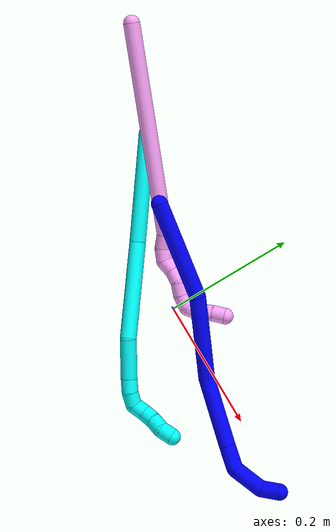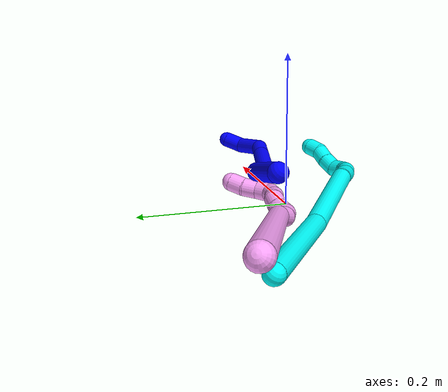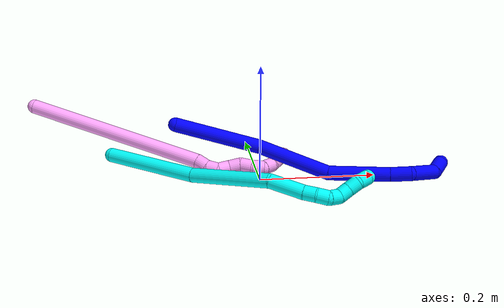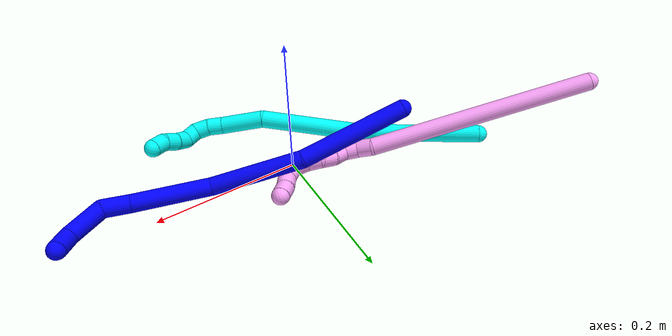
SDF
<sdf version="1.7">
 <world name="default">
  <model name="1">
   <static>0</static>
   <link name="1">
    <collision name="collision-cylinder-e_1_1_4">
     <pose>0.044914 -0.021619 0.056949 0.362815 0.635348 0.120477</pose>
     <geometry><cylinder><radius>0.0125</radius><length>0.151365</length></cylinder></geometry>
     <surface>
      <friction><ode><mu>1.16</mu><mu2>1.16</mu2><slip1>0</slip1><slip2>0</slip2></ode></friction>
      <contact><ode><kp>1e+06</kp><kd>1</kd><max_vel>0</max_vel><min_depth>0.001</min_depth></ode></contact>
     </surface>
    </collision>
    <visual name="visual-cylinder-e_1_1_4">
     <pose>0.044914 -0.021619 0.056949 0.362815 0.635348 0.120477</pose>
     <geometry><cylinder><radius>0.0125</radius><length>0.151365</length></cylinder></geometry>
     <material><ambient>0 0 1 1</ambient></material>
    </visual>
    <collision name="collision-cylinder-e_2_4_5">
     <pose>0.139457 -0.051892 0.153822 0.213468 0.882098 0.101069</pose>
     <geometry><cylinder><radius>0.0125</radius><length>0.12856</length></cylinder></geometry>
     <surface>
      <friction><ode><mu>1.16</mu><mu2>1.16</mu2><slip1>0</slip1><slip2>0</slip2></ode></friction>
      <contact><ode><kp>1e+06</kp><kd>1</kd><max_vel>0</max_vel><min_depth>0.001</min_depth></ode></contact>
     </surface>
    </collision>
    <visual name="visual-cylinder-e_2_4_5">
     <pose>0.139457 -0.051892 0.153822 0.213468 0.882098 0.101069</pose>
     <geometry><cylinder><radius>0.0125</radius><length>0.12856</length></cylinder></geometry>
     <material><ambient>0 0 1 1</ambient></material>
    </visual>
    <collision name="collision-cylinder-e_3_5_6">
     <pose>0.226017 -0.084832 0.222298 0.704849 0.777988 0.299236</pose>
     <geometry><cylinder><radius>0.0125</radius><length>0.105239</length></cylinder></geometry>
     <surface>
      <friction><ode><mu>1.16</mu><mu2>1.16</mu2><slip1>0</slip1><slip2>0</slip2></ode></friction>
      <contact><ode><kp>1e+06</kp><kd>1</kd><max_vel>0</max_vel><min_depth>0.001</min_depth></ode></contact>
     </surface>
    </collision>
    <visual name="visual-cylinder-e_3_5_6">
     <pose>0.226017 -0.084832 0.222298 0.704849 0.777988 0.299236</pose>
     <geometry><cylinder><radius>0.0125</radius><length>0.105239</length></cylinder></geometry>
     <material><ambient>0 0 1 1</ambient></material>
    </visual>
    <collision name="collision-cylinder-e_4_6_7">
     <pose>0.275346 -0.118523 0.26002 0.798015 0.756455 0.331989</pose>
     <geometry><cylinder><radius>0.0125</radius><length>0.036126</length></cylinder></geometry>
     <surface>
      <friction><ode><mu>1.16</mu><mu2>1.16</mu2><slip1>0</slip1><slip2>0</slip2></ode></friction>
      <contact><ode><kp>1e+06</kp><kd>1</kd><max_vel>0</max_vel><min_depth>0.001</min_depth></ode></contact>
     </surface>
    </collision>
    <visual name="visual-cylinder-e_4_6_7">
     <pose>0.275346 -0.118523 0.26002 0.798015 0.756455 0.331989</pose>
     <geometry><cylinder><radius>0.0125</radius><length>0.036126</length></cylinder></geometry>
     <material><ambient>0 0 1 1</ambient></material>
    </visual>
    <collision name="collision-cylinder-e_5_7_8">
     <pose>0.291672 -0.142014 0.289212 0.613081 0.159143 0.050467</pose>
     <geometry><cylinder><radius>0.0125</radius><length>0.049585</length></cylinder></geometry>
     <surface>
      <friction><ode><mu>1.16</mu><mu2>1.16</mu2><slip1>0</slip1><slip2>0</slip2></ode></friction>
      <contact><ode><kp>1e+06</kp><kd>1</kd><max_vel>0</max_vel><min_depth>0.001</min_depth></ode></contact>
     </surface>
    </collision>
    <visual name="visual-cylinder-e_5_7_8">
     <pose>0.291672 -0.142014 0.289212 0.613081 0.159143 0.050467</pose>
     <geometry><cylinder><radius>0.0125</radius><length>0.049585</length></cylinder></geometry>
     <material><ambient>0 0 1 1</ambient></material>
    </visual>
    <collision name="collision-cylinder-e_6_8_2">
     <pose>0.290835 -0.168106 0.315956 1.06038 -0.333419 -0.196634</pose>
     <geometry><cylinder><radius>0.0125</radius><length>0.029124</length></cylinder></geometry>
     <surface>
      <friction><ode><mu>1.16</mu><mu2>1.16</mu2><slip1>0</slip1><slip2>0</slip2></ode></friction>
      <contact><ode><kp>1e+06</kp><kd>1</kd><max_vel>0</max_vel><min_depth>0.001</min_depth></ode></contact>
     </surface>
    </collision>
    <visual name="visual-cylinder-e_6_8_2">
     <pose>0.290835 -0.168106 0.315956 1.06038 -0.333419 -0.196634</pose>
     <geometry><cylinder><radius>0.0125</radius><length>0.029124</length></cylinder></geometry>
     <material><ambient>0 0 1 1</ambient></material>
    </visual>
    <collision name="collision-sphere-2">
     <pose>0.286069 -0.180112 0.322678 0 -0 0</pose>
     <geometry><sphere><radius>0.0125</radius></sphere></geometry>
     <surface>
      <friction><ode><mu>1.16</mu><mu2>1.16</mu2><slip1>0</slip1><slip2>0</slip2></ode></friction>
      <contact><ode><kp>1e+06</kp><kd>1</kd><max_vel>0</max_vel><min_depth>0.001</min_depth></ode></contact>
     </surface>
    </collision>
    <visual name="visual-sphere-2">
     <pose>0.286069 -0.180112 0.322678 0 -0 0</pose>
     <geometry><sphere><radius>0.0125</radius></sphere></geometry>
     <material><ambient>0 0 1 1</ambient></material>
    </visual>
    <collision name="collision-sphere-4">
     <pose>0.089829 -0.043238 0.113897 0 -0 0</pose>
     <geometry><sphere><radius>0.0125</radius></sphere></geometry>
     <surface>
      <friction><ode><mu>1.16</mu><mu2>1.16</mu2><slip1>0</slip1><slip2>0</slip2></ode></friction>
      <contact><ode><kp>1e+06</kp><kd>1</kd><max_vel>0</max_vel><min_depth>0.001</min_depth></ode></contact>
     </surface>
    </collision>
    <visual name="visual-sphere-4">
     <pose>0.089829 -0.043238 0.113897 0 -0 0</pose>
     <geometry><sphere><radius>0.0125</radius></sphere></geometry>
     <material><ambient>0 0 1 1</ambient></material>
    </visual>
    <collision name="collision-sphere-1">
     <geometry><sphere><radius>0.0125</radius></sphere></geometry>
     <surface>
      <friction><ode><mu>1.16</mu><mu2>1.16</mu2><slip1>0</slip1><slip2>0</slip2></ode></friction>
      <contact><ode><kp>1e+06</kp><kd>1</kd><max_vel>0</max_vel><min_depth>0.001</min_depth></ode></contact>
     </surface>
    </collision>
    <visual name="visual-sphere-1">
     <geometry><sphere><radius>0.0125</radius></sphere></geometry>
     <material><ambient>0 0 1 1</ambient></material>
    </visual>
    <collision name="collision-sphere-8">
     <pose>0.295601 -0.156099 0.309233 0 -0 0</pose>
     <geometry><sphere><radius>0.0125</radius></sphere></geometry>
     <surface>
      <friction><ode><mu>1.16</mu><mu2>1.16</mu2><slip1>0</slip1><slip2>0</slip2></ode></friction>
      <contact><ode><kp>1e+06</kp><kd>1</kd><max_vel>0</max_vel><min_depth>0.001</min_depth></ode></contact>
     </surface>
    </collision>
    <visual name="visual-sphere-8">
     <pose>0.295601 -0.156099 0.309233 0 -0 0</pose>
     <geometry><sphere><radius>0.0125</radius></sphere></geometry>
     <material><ambient>0 0 1 1</ambient></material>
    </visual>
    <collision name="collision-sphere-5">
     <pose>0.189086 -0.060547 0.193747 0 -0 0</pose>
     <geometry><sphere><radius>0.0125</radius></sphere></geometry>
     <surface>
      <friction><ode><mu>1.16</mu><mu2>1.16</mu2><slip1>0</slip1><slip2>0</slip2></ode></friction>
      <contact><ode><kp>1e+06</kp><kd>1</kd><max_vel>0</max_vel><min_depth>0.001</min_depth></ode></contact>
     </surface>
    </collision>
    <visual name="visual-sphere-5">
     <pose>0.189086 -0.060547 0.193747 0 -0 0</pose>
     <geometry><sphere><radius>0.0125</radius></sphere></geometry>
     <material><ambient>0 0 1 1</ambient></material>
    </visual>
    <collision name="collision-sphere-6">
     <pose>0.262948 -0.109118 0.250848 0 -0 0</pose>
     <geometry><sphere><radius>0.0125</radius></sphere></geometry>
     <surface>
      <friction><ode><mu>1.16</mu><mu2>1.16</mu2><slip1>0</slip1><slip2>0</slip2></ode></friction>
      <contact><ode><kp>1e+06</kp><kd>1</kd><max_vel>0</max_vel><min_depth>0.001</min_depth></ode></contact>
     </surface>
    </collision>
    <visual name="visual-sphere-6">
     <pose>0.262948 -0.109118 0.250848 0 -0 0</pose>
     <geometry><sphere><radius>0.0125</radius></sphere></geometry>
     <material><ambient>0 0 1 1</ambient></material>
    </visual>
    <collision name="collision-sphere-7">
     <pose>0.287743 -0.127929 0.269191 0 -0 0</pose>
     <geometry><sphere><radius>0.0125</radius></sphere></geometry>
     <surface>
      <friction><ode><mu>1.16</mu><mu2>1.16</mu2><slip1>0</slip1><slip2>0</slip2></ode></friction>
      <contact><ode><kp>1e+06</kp><kd>1</kd><max_vel>0</max_vel><min_depth>0.001</min_depth></ode></contact>
     </surface>
    </collision>
    <visual name="visual-sphere-7">
     <pose>0.287743 -0.127929 0.269191 0 -0 0</pose>
     <geometry><sphere><radius>0.0125</radius></sphere></geometry>
     <material><ambient>0 0 1 1</ambient></material>
    </visual>
    <inertial>
     <pose>0.162787 -0.070182 0.169452 0 -0 0</pose>
     <mass>0.5</mass>
     <inertia>
      <ixx>0.000523</ixx>
      <ixy>0</ixy>
      <ixz>0</ixz>
      <iyy>0.000613</iyy>
      <iyz>0</iyz>
      <izz>-0.000198</izz>
     </inertia>
    </inertial>
   </link>
   <pose>-0.140435 0.061318 0.085054 -2.30134 -0.055555 -1.03619</pose>
  </model>
  <model name="3">
   <static>0</static>
   <link name="3">
    <collision name="collision-cylinder-e_1_1_4">
     <pose>0.078138 0.016786 0.027687 -0.545019 1.17796 -0.369155</pose>
     <geometry><cylinder><radius>0.0125</radius><length>0.169162</length></cylinder></geometry>
     <surface>
      <friction><ode><mu>1.16</mu><mu2>1.16</mu2><slip1>0</slip1><slip2>0</slip2></ode></friction>
      <contact><ode><kp>1e+06</kp><kd>1</kd><max_vel>0</max_vel><min_depth>0.001</min_depth></ode></contact>
     </surface>
    </collision>
    <visual name="visual-cylinder-e_1_1_4">
     <pose>0.078138 0.016786 0.027687 -0.545019 1.17796 -0.369155</pose>
     <geometry><cylinder><radius>0.0125</radius><length>0.169162</length></cylinder></geometry>
     <material><ambient>0.003922 1 0.996078 1</ambient></material>
    </visual>
    <collision name="collision-cylinder-e_2_4_5">
     <pose>0.228738 0.042405 0.070101 -0.54027 1.33811 -0.4311</pose>
     <geometry><cylinder><radius>0.0125</radius><length>0.148937</length></cylinder></geometry>
     <surface>
      <friction><ode><mu>1.16</mu><mu2>1.16</mu2><slip1>0</slip1><slip2>0</slip2></ode></friction>
      <contact><ode><kp>1e+06</kp><kd>1</kd><max_vel>0</max_vel><min_depth>0.001</min_depth></ode></contact>
     </surface>
    </collision>
    <visual name="visual-cylinder-e_2_4_5">
     <pose>0.228738 0.042405 0.070101 -0.54027 1.33811 -0.4311</pose>
     <geometry><cylinder><radius>0.0125</radius><length>0.148937</length></cylinder></geometry>
     <material><ambient>0.003922 1 0.996078 1</ambient></material>
    </visual>
    <collision name="collision-cylinder-e_3_5_6">
     <pose>0.327171 0.056741 0.09943 -0.360376 1.02974 -0.2054</pose>
     <geometry><cylinder><radius>0.0125</radius><length>0.060599</length></cylinder></geometry>
     <surface>
      <friction><ode><mu>1.16</mu><mu2>1.16</mu2><slip1>0</slip1><slip2>0</slip2></ode></friction>
      <contact><ode><kp>1e+06</kp><kd>1</kd><max_vel>0</max_vel><min_depth>0.001</min_depth></ode></contact>
     </surface>
    </collision>
    <visual name="visual-cylinder-e_3_5_6">
     <pose>0.327171 0.056741 0.09943 -0.360376 1.02974 -0.2054</pose>
     <geometry><cylinder><radius>0.0125</radius><length>0.060599</length></cylinder></geometry>
     <material><ambient>0.003922 1 0.996078 1</ambient></material>
    </visual>
    <collision name="collision-cylinder-e_4_6_7">
     <pose>0.362619 0.063084 0.118618 -0.181379 1.11374 -0.113116</pose>
     <geometry><cylinder><radius>0.0125</radius><length>0.021123</length></cylinder></geometry>
     <surface>
      <friction><ode><mu>1.16</mu><mu2>1.16</mu2><slip1>0</slip1><slip2>0</slip2></ode></friction>
      <contact><ode><kp>1e+06</kp><kd>1</kd><max_vel>0</max_vel><min_depth>0.001</min_depth></ode></contact>
     </surface>
    </collision>
    <visual name="visual-cylinder-e_4_6_7">
     <pose>0.362619 0.063084 0.118618 -0.181379 1.11374 -0.113116</pose>
     <geometry><cylinder><radius>0.0125</radius><length>0.021123</length></cylinder></geometry>
     <material><ambient>0.003922 1 0.996078 1</ambient></material>
    </visual>
    <collision name="collision-cylinder-e_5_7_8">
     <pose>0.380022 0.063567 0.129326 0.058363 0.912149 0.028637</pose>
     <geometry><cylinder><radius>0.0125</radius><length>0.020044</length></cylinder></geometry>
     <surface>
      <friction><ode><mu>1.16</mu><mu2>1.16</mu2><slip1>0</slip1><slip2>0</slip2></ode></friction>
      <contact><ode><kp>1e+06</kp><kd>1</kd><max_vel>0</max_vel><min_depth>0.001</min_depth></ode></contact>
     </surface>
    </collision>
    <visual name="visual-cylinder-e_5_7_8">
     <pose>0.380022 0.063567 0.129326 0.058363 0.912149 0.028637</pose>
     <geometry><cylinder><radius>0.0125</radius><length>0.020044</length></cylinder></geometry>
     <material><ambient>0.003922 1 0.996078 1</ambient></material>
    </visual>
    <collision name="collision-cylinder-e_6_8_9">
     <pose>0.392555 0.057231 0.1421 0.732207 0.475701 0.185364</pose>
     <geometry><cylinder><radius>0.0125</radius><length>0.02012</length></cylinder></geometry>
     <surface>
      <friction><ode><mu>1.16</mu><mu2>1.16</mu2><slip1>0</slip1><slip2>0</slip2></ode></friction>
      <contact><ode><kp>1e+06</kp><kd>1</kd><max_vel>0</max_vel><min_depth>0.001</min_depth></ode></contact>
     </surface>
    </collision>
    <visual name="visual-cylinder-e_6_8_9">
     <pose>0.392555 0.057231 0.1421 0.732207 0.475701 0.185364</pose>
     <geometry><cylinder><radius>0.0125</radius><length>0.02012</length></cylinder></geometry>
     <material><ambient>0.003922 1 0.996078 1</ambient></material>
    </visual>
    <collision name="collision-cylinder-e_7_9_10">
     <pose>0.403162 0.043458 0.150569 1.34164 0.643261 0.517017</pose>
     <geometry><cylinder><radius>0.0125</radius><length>0.020005</length></cylinder></geometry>
     <surface>
      <friction><ode><mu>1.16</mu><mu2>1.16</mu2><slip1>0</slip1><slip2>0</slip2></ode></friction>
      <contact><ode><kp>1e+06</kp><kd>1</kd><max_vel>0</max_vel><min_depth>0.001</min_depth></ode></contact>
     </surface>
    </collision>
    <visual name="visual-cylinder-e_7_9_10">
     <pose>0.403162 0.043458 0.150569 1.34164 0.643261 0.517017</pose>
     <geometry><cylinder><radius>0.0125</radius><length>0.020005</length></cylinder></geometry>
     <material><ambient>0.003922 1 0.996078 1</ambient></material>
    </visual>
    <collision name="collision-cylinder-e_8_10_11">
     <pose>0.416244 0.028691 0.153518 1.41002 0.786703 0.678866</pose>
     <geometry><cylinder><radius>0.0125</radius><length>0.020005</length></cylinder></geometry>
     <surface>
      <friction><ode><mu>1.16</mu><mu2>1.16</mu2><slip1>0</slip1><slip2>0</slip2></ode></friction>
      <contact><ode><kp>1e+06</kp><kd>1</kd><max_vel>0</max_vel><min_depth>0.001</min_depth></ode></contact>
     </surface>
    </collision>
    <visual name="visual-cylinder-e_8_10_11">
     <pose>0.416244 0.028691 0.153518 1.41002 0.786703 0.678866</pose>
     <geometry><cylinder><radius>0.0125</radius><length>0.020005</length></cylinder></geometry>
     <material><ambient>0.003922 1 0.996078 1</ambient></material>
    </visual>
    <collision name="collision-cylinder-e_9_11_2">
     <pose>0.4281 0.014028 0.158905 1.06528 0.497603 0.297317</pose>
     <geometry><cylinder><radius>0.0125</radius><length>0.020006</length></cylinder></geometry>
     <surface>
      <friction><ode><mu>1.16</mu><mu2>1.16</mu2><slip1>0</slip1><slip2>0</slip2></ode></friction>
      <contact><ode><kp>1e+06</kp><kd>1</kd><max_vel>0</max_vel><min_depth>0.001</min_depth></ode></contact>
     </surface>
    </collision>
    <visual name="visual-cylinder-e_9_11_2">
     <pose>0.4281 0.014028 0.158905 1.06528 0.497603 0.297317</pose>
     <geometry><cylinder><radius>0.0125</radius><length>0.020006</length></cylinder></geometry>
     <material><ambient>0.003922 1 0.996078 1</ambient></material>
    </visual>
    <collision name="collision-sphere-2">
     <pose>0.432875 0.006338 0.163162 0 -0 0</pose>
     <geometry><sphere><radius>0.0125</radius></sphere></geometry>
     <surface>
      <friction><ode><mu>1.16</mu><mu2>1.16</mu2><slip1>0</slip1><slip2>0</slip2></ode></friction>
      <contact><ode><kp>1e+06</kp><kd>1</kd><max_vel>0</max_vel><min_depth>0.001</min_depth></ode></contact>
     </surface>
    </collision>
    <visual name="visual-sphere-2">
     <pose>0.432875 0.006338 0.163162 0 -0 0</pose>
     <geometry><sphere><radius>0.0125</radius></sphere></geometry>
     <material><ambient>0.003922 1 0.996078 1</ambient></material>
    </visual>
    <collision name="collision-sphere-11">
     <pose>0.423326 0.021719 0.154649 0 -0 0</pose>
     <geometry><sphere><radius>0.0125</radius></sphere></geometry>
     <surface>
      <friction><ode><mu>1.16</mu><mu2>1.16</mu2><slip1>0</slip1><slip2>0</slip2></ode></friction>
      <contact><ode><kp>1e+06</kp><kd>1</kd><max_vel>0</max_vel><min_depth>0.001</min_depth></ode></contact>
     </surface>
    </collision>
    <visual name="visual-sphere-11">
     <pose>0.423326 0.021719 0.154649 0 -0 0</pose>
     <geometry><sphere><radius>0.0125</radius></sphere></geometry>
     <material><ambient>0.003922 1 0.996078 1</ambient></material>
    </visual>
    <collision name="collision-sphere-10">
     <pose>0.409161 0.035664 0.152387 0 -0 0</pose>
     <geometry><sphere><radius>0.0125</radius></sphere></geometry>
     <surface>
      <friction><ode><mu>1.16</mu><mu2>1.16</mu2><slip1>0</slip1><slip2>0</slip2></ode></friction>
      <contact><ode><kp>1e+06</kp><kd>1</kd><max_vel>0</max_vel><min_depth>0.001</min_depth></ode></contact>
     </surface>
    </collision>
    <visual name="visual-sphere-10">
     <pose>0.409161 0.035664 0.152387 0 -0 0</pose>
     <geometry><sphere><radius>0.0125</radius></sphere></geometry>
     <material><ambient>0.003922 1 0.996078 1</ambient></material>
    </visual>
    <collision name="collision-sphere-9">
     <pose>0.397162 0.051252 0.148751 0 -0 0</pose>
     <geometry><sphere><radius>0.0125</radius></sphere></geometry>
     <surface>
      <friction><ode><mu>1.16</mu><mu2>1.16</mu2><slip1>0</slip1><slip2>0</slip2></ode></friction>
      <contact><ode><kp>1e+06</kp><kd>1</kd><max_vel>0</max_vel><min_depth>0.001</min_depth></ode></contact>
     </surface>
    </collision>
    <visual name="visual-sphere-9">
     <pose>0.397162 0.051252 0.148751 0 -0 0</pose>
     <geometry><sphere><radius>0.0125</radius></sphere></geometry>
     <material><ambient>0.003922 1 0.996078 1</ambient></material>
    </visual>
    <collision name="collision-sphere-4">
     <pose>0.156276 0.033572 0.055375 0 -0 0</pose>
     <geometry><sphere><radius>0.0125</radius></sphere></geometry>
     <surface>
      <friction><ode><mu>1.16</mu><mu2>1.16</mu2><slip1>0</slip1><slip2>0</slip2></ode></friction>
      <contact><ode><kp>1e+06</kp><kd>1</kd><max_vel>0</max_vel><min_depth>0.001</min_depth></ode></contact>
     </surface>
    </collision>
    <visual name="visual-sphere-4">
     <pose>0.156276 0.033572 0.055375 0 -0 0</pose>
     <geometry><sphere><radius>0.0125</radius></sphere></geometry>
     <material><ambient>0.003922 1 0.996078 1</ambient></material>
    </visual>
    <collision name="collision-sphere-1">
     <geometry><sphere><radius>0.0125</radius></sphere></geometry>
     <surface>
      <friction><ode><mu>1.16</mu><mu2>1.16</mu2><slip1>0</slip1><slip2>0</slip2></ode></friction>
      <contact><ode><kp>1e+06</kp><kd>1</kd><max_vel>0</max_vel><min_depth>0.001</min_depth></ode></contact>
     </surface>
    </collision>
    <visual name="visual-sphere-1">
     <geometry><sphere><radius>0.0125</radius></sphere></geometry>
     <material><ambient>0.003922 1 0.996078 1</ambient></material>
    </visual>
    <collision name="collision-sphere-8">
     <pose>0.387948 0.063209 0.135449 0 -0 0</pose>
     <geometry><sphere><radius>0.0125</radius></sphere></geometry>
     <surface>
      <friction><ode><mu>1.16</mu><mu2>1.16</mu2><slip1>0</slip1><slip2>0</slip2></ode></friction>
      <contact><ode><kp>1e+06</kp><kd>1</kd><max_vel>0</max_vel><min_depth>0.001</min_depth></ode></contact>
     </surface>
    </collision>
    <visual name="visual-sphere-8">
     <pose>0.387948 0.063209 0.135449 0 -0 0</pose>
     <geometry><sphere><radius>0.0125</radius></sphere></geometry>
     <material><ambient>0.003922 1 0.996078 1</ambient></material>
    </visual>
    <collision name="collision-sphere-5">
     <pose>0.301199 0.051238 0.084827 0 -0 0</pose>
     <geometry><sphere><radius>0.0125</radius></sphere></geometry>
     <surface>
      <friction><ode><mu>1.16</mu><mu2>1.16</mu2><slip1>0</slip1><slip2>0</slip2></ode></friction>
      <contact><ode><kp>1e+06</kp><kd>1</kd><max_vel>0</max_vel><min_depth>0.001</min_depth></ode></contact>
     </surface>
    </collision>
    <visual name="visual-sphere-5">
     <pose>0.301199 0.051238 0.084827 0 -0 0</pose>
     <geometry><sphere><radius>0.0125</radius></sphere></geometry>
     <material><ambient>0.003922 1 0.996078 1</ambient></material>
    </visual>
    <collision name="collision-sphere-6">
     <pose>0.353142 0.062244 0.114033 0 -0 0</pose>
     <geometry><sphere><radius>0.0125</radius></sphere></geometry>
     <surface>
      <friction><ode><mu>1.16</mu><mu2>1.16</mu2><slip1>0</slip1><slip2>0</slip2></ode></friction>
      <contact><ode><kp>1e+06</kp><kd>1</kd><max_vel>0</max_vel><min_depth>0.001</min_depth></ode></contact>
     </surface>
    </collision>
    <visual name="visual-sphere-6">
     <pose>0.353142 0.062244 0.114033 0 -0 0</pose>
     <geometry><sphere><radius>0.0125</radius></sphere></geometry>
     <material><ambient>0.003922 1 0.996078 1</ambient></material>
    </visual>
    <collision name="collision-sphere-7">
     <pose>0.372097 0.063925 0.123202 0 -0 0</pose>
     <geometry><sphere><radius>0.0125</radius></sphere></geometry>
     <surface>
      <friction><ode><mu>1.16</mu><mu2>1.16</mu2><slip1>0</slip1><slip2>0</slip2></ode></friction>
      <contact><ode><kp>1e+06</kp><kd>1</kd><max_vel>0</max_vel><min_depth>0.001</min_depth></ode></contact>
     </surface>
    </collision>
    <visual name="visual-sphere-7">
     <pose>0.372097 0.063925 0.123202 0 -0 0</pose>
     <geometry><sphere><radius>0.0125</radius></sphere></geometry>
     <material><ambient>0.003922 1 0.996078 1</ambient></material>
    </visual>
    <inertial>
     <pose>0.230486 0.036152 0.076737 0 -0 0</pose>
     <mass>0.5</mass>
     <inertia>
      <ixx>0.000171</ixx>
      <ixy>0</ixy>
      <ixz>0</ixz>
      <iyy>0.000619</iyy>
      <iyz>0</iyz>
      <izz>-0.000778</izz>
     </inertia>
    </inertial>
   </link>
   <pose>-0.2523 0.103724 0.018536 -2.57384 -0.351112 -0.633515</pose>
  </model>
  <model name="4">
   <static>0</static>
   <link name="4">
    <collision name="collision-cylinder-e_1_1_4">
     <pose>0.04089 -0.027912 -0.150019 2.95764 0.261817 1.91938</pose>
     <geometry><cylinder><radius>0.0125</radius><length>0.315954</length></cylinder></geometry>
     <surface>
      <friction><ode><mu>1.16</mu><mu2>1.16</mu2><slip1>0</slip1><slip2>0</slip2></ode></friction>
      <contact><ode><kp>1e+06</kp><kd>1</kd><max_vel>0</max_vel><min_depth>0.001</min_depth></ode></contact>
     </surface>
    </collision>
    <visual name="visual-cylinder-e_1_1_4">
     <pose>0.04089 -0.027912 -0.150019 2.95764 0.261817 1.91938</pose>
     <geometry><cylinder><radius>0.0125</radius><length>0.315954</length></cylinder></geometry>
     <material><ambient>1 0.65098 0.996078 1</ambient></material>
    </visual>
    <collision name="collision-cylinder-e_2_4_5">
     <pose>0.081058 -0.058511 -0.31083 2.89765 -0.064869 -0.517516</pose>
     <geometry><cylinder><radius>0.0125</radius><length>0.022291</length></cylinder></geometry>
     <surface>
      <friction><ode><mu>1.16</mu><mu2>1.16</mu2><slip1>0</slip1><slip2>0</slip2></ode></friction>
      <contact><ode><kp>1e+06</kp><kd>1</kd><max_vel>0</max_vel><min_depth>0.001</min_depth></ode></contact>
     </surface>
    </collision>
    <visual name="visual-cylinder-e_2_4_5">
     <pose>0.081058 -0.058511 -0.31083 2.89765 -0.064869 -0.517516</pose>
     <geometry><cylinder><radius>0.0125</radius><length>0.022291</length></cylinder></geometry>
     <material><ambient>1 0.65098 0.996078 1</ambient></material>
    </visual>
    <collision name="collision-cylinder-e_3_5_6">
     <pose>0.083205 -0.063934 -0.330883 2.85421 0.288888 1.5761</pose>
     <geometry><cylinder><radius>0.0125</radius><length>0.020148</length></cylinder></geometry>
     <surface>
      <friction><ode><mu>1.16</mu><mu2>1.16</mu2><slip1>0</slip1><slip2>0</slip2></ode></friction>
      <contact><ode><kp>1e+06</kp><kd>1</kd><max_vel>0</max_vel><min_depth>0.001</min_depth></ode></contact>
     </surface>
    </collision>
    <visual name="visual-cylinder-e_3_5_6">
     <pose>0.083205 -0.063934 -0.330883 2.85421 0.288888 1.5761</pose>
     <geometry><cylinder><radius>0.0125</radius><length>0.020148</length></cylinder></geometry>
     <material><ambient>1 0.65098 0.996078 1</ambient></material>
    </visual>
    <collision name="collision-cylinder-e_4_6_7">
     <pose>0.094138 -0.068069 -0.346057 2.90952 0.925022 2.68228</pose>
     <geometry><cylinder><radius>0.0125</radius><length>0.020192</length></cylinder></geometry>
     <surface>
      <friction><ode><mu>1.16</mu><mu2>1.16</mu2><slip1>0</slip1><slip2>0</slip2></ode></friction>
      <contact><ode><kp>1e+06</kp><kd>1</kd><max_vel>0</max_vel><min_depth>0.001</min_depth></ode></contact>
     </surface>
    </collision>
    <visual name="visual-cylinder-e_4_6_7">
     <pose>0.094138 -0.068069 -0.346057 2.90952 0.925022 2.68228</pose>
     <geometry><cylinder><radius>0.0125</radius><length>0.020192</length></cylinder></geometry>
     <material><ambient>1 0.65098 0.996078 1</ambient></material>
    </visual>
    <collision name="collision-cylinder-e_5_7_8">
     <pose>0.109158 -0.073196 -0.358509 2.62317 0.745979 1.95043</pose>
     <geometry><cylinder><radius>0.0125</radius><length>0.020501</length></cylinder></geometry>
     <surface>
      <friction><ode><mu>1.16</mu><mu2>1.16</mu2><slip1>0</slip1><slip2>0</slip2></ode></friction>
      <contact><ode><kp>1e+06</kp><kd>1</kd><max_vel>0</max_vel><min_depth>0.001</min_depth></ode></contact>
     </surface>
    </collision>
    <visual name="visual-cylinder-e_5_7_8">
     <pose>0.109158 -0.073196 -0.358509 2.62317 0.745979 1.95043</pose>
     <geometry><cylinder><radius>0.0125</radius><length>0.020501</length></cylinder></geometry>
     <material><ambient>1 0.65098 0.996078 1</ambient></material>
    </visual>
    <collision name="collision-cylinder-e_6_8_9">
     <pose>0.119517 -0.079565 -0.374135 2.85905 0.345117 1.77278</pose>
     <geometry><cylinder><radius>0.0125</radius><length>0.02011</length></cylinder></geometry>
     <surface>
      <friction><ode><mu>1.16</mu><mu2>1.16</mu2><slip1>0</slip1><slip2>0</slip2></ode></friction>
      <contact><ode><kp>1e+06</kp><kd>1</kd><max_vel>0</max_vel><min_depth>0.001</min_depth></ode></contact>
     </surface>
    </collision>
    <visual name="visual-cylinder-e_6_8_9">
     <pose>0.119517 -0.079565 -0.374135 2.85905 0.345117 1.77278</pose>
     <geometry><cylinder><radius>0.0125</radius><length>0.02011</length></cylinder></geometry>
     <material><ambient>1 0.65098 0.996078 1</ambient></material>
    </visual>
    <collision name="collision-cylinder-e_7_9_10">
     <pose>0.128647 -0.083652 -0.391626 2.97085 0.59153 2.59399</pose>
     <geometry><cylinder><radius>0.0125</radius><length>0.020546</length></cylinder></geometry>
     <surface>
      <friction><ode><mu>1.16</mu><mu2>1.16</mu2><slip1>0</slip1><slip2>0</slip2></ode></friction>
      <contact><ode><kp>1e+06</kp><kd>1</kd><max_vel>0</max_vel><min_depth>0.001</min_depth></ode></contact>
     </surface>
    </collision>
    <visual name="visual-cylinder-e_7_9_10">
     <pose>0.128647 -0.083652 -0.391626 2.97085 0.59153 2.59399</pose>
     <geometry><cylinder><radius>0.0125</radius><length>0.020546</length></cylinder></geometry>
     <material><ambient>1 0.65098 0.996078 1</ambient></material>
    </visual>
    <collision name="collision-cylinder-e_8_10_11">
     <pose>0.143649 -0.08264 -0.403111 -2.4678 1.16873 -2.16759</pose>
     <geometry><cylinder><radius>0.0125</radius><length>0.020155</length></cylinder></geometry>
     <surface>
      <friction><ode><mu>1.16</mu><mu2>1.16</mu2><slip1>0</slip1><slip2>0</slip2></ode></friction>
      <contact><ode><kp>1e+06</kp><kd>1</kd><max_vel>0</max_vel><min_depth>0.001</min_depth></ode></contact>
     </surface>
    </collision>
    <visual name="visual-cylinder-e_8_10_11">
     <pose>0.143649 -0.08264 -0.403111 -2.4678 1.16873 -2.16759</pose>
     <geometry><cylinder><radius>0.0125</radius><length>0.020155</length></cylinder></geometry>
     <material><ambient>1 0.65098 0.996078 1</ambient></material>
    </visual>
    <collision name="collision-cylinder-e_9_11_12">
     <pose>0.162402 -0.076944 -0.406139 -1.55433 1.24179 -1.22625</pose>
     <geometry><cylinder><radius>0.0125</radius><length>0.020032</length></cylinder></geometry>
     <surface>
      <friction><ode><mu>1.16</mu><mu2>1.16</mu2><slip1>0</slip1><slip2>0</slip2></ode></friction>
      <contact><ode><kp>1e+06</kp><kd>1</kd><max_vel>0</max_vel><min_depth>0.001</min_depth></ode></contact>
     </surface>
    </collision>
    <visual name="visual-cylinder-e_9_11_12">
     <pose>0.162402 -0.076944 -0.406139 -1.55433 1.24179 -1.22625</pose>
     <geometry><cylinder><radius>0.0125</radius><length>0.020032</length></cylinder></geometry>
     <material><ambient>1 0.65098 0.996078 1</ambient></material>
    </visual>
    <collision name="collision-cylinder-e_10_12_2">
     <pose>0.181766 -0.072253 -0.407021 -2.14192 1.39753 -1.98889</pose>
     <geometry><cylinder><radius>0.0125</radius><length>0.020071</length></cylinder></geometry>
     <surface>
      <friction><ode><mu>1.16</mu><mu2>1.16</mu2><slip1>0</slip1><slip2>0</slip2></ode></friction>
      <contact><ode><kp>1e+06</kp><kd>1</kd><max_vel>0</max_vel><min_depth>0.001</min_depth></ode></contact>
     </surface>
    </collision>
    <visual name="visual-cylinder-e_10_12_2">
     <pose>0.181766 -0.072253 -0.407021 -2.14192 1.39753 -1.98889</pose>
     <geometry><cylinder><radius>0.0125</radius><length>0.020071</length></cylinder></geometry>
     <material><ambient>1 0.65098 0.996078 1</ambient></material>
    </visual>
    <collision name="collision-sphere-2">
     <pose>0.191651 -0.070797 -0.407957 0 -0 0</pose>
     <geometry><sphere><radius>0.0125</radius></sphere></geometry>
     <surface>
      <friction><ode><mu>1.16</mu><mu2>1.16</mu2><slip1>0</slip1><slip2>0</slip2></ode></friction>
      <contact><ode><kp>1e+06</kp><kd>1</kd><max_vel>0</max_vel><min_depth>0.001</min_depth></ode></contact>
     </surface>
    </collision>
    <visual name="visual-sphere-2">
     <pose>0.191651 -0.070797 -0.407957 0 -0 0</pose>
     <geometry><sphere><radius>0.0125</radius></sphere></geometry>
     <material><ambient>1 0.65098 0.996078 1</ambient></material>
    </visual>
    <collision name="collision-sphere-12">
     <pose>0.17188 -0.073708 -0.406086 0 -0 0</pose>
     <geometry><sphere><radius>0.0125</radius></sphere></geometry>
     <surface>
      <friction><ode><mu>1.16</mu><mu2>1.16</mu2><slip1>0</slip1><slip2>0</slip2></ode></friction>
      <contact><ode><kp>1e+06</kp><kd>1</kd><max_vel>0</max_vel><min_depth>0.001</min_depth></ode></contact>
     </surface>
    </collision>
    <visual name="visual-sphere-12">
     <pose>0.17188 -0.073708 -0.406086 0 -0 0</pose>
     <geometry><sphere><radius>0.0125</radius></sphere></geometry>
     <material><ambient>1 0.65098 0.996078 1</ambient></material>
    </visual>
    <collision name="collision-sphere-11">
     <pose>0.152923 -0.08018 -0.406193 0 -0 0</pose>
     <geometry><sphere><radius>0.0125</radius></sphere></geometry>
     <surface>
      <friction><ode><mu>1.16</mu><mu2>1.16</mu2><slip1>0</slip1><slip2>0</slip2></ode></friction>
      <contact><ode><kp>1e+06</kp><kd>1</kd><max_vel>0</max_vel><min_depth>0.001</min_depth></ode></contact>
     </surface>
    </collision>
    <visual name="visual-sphere-11">
     <pose>0.152923 -0.08018 -0.406193 0 -0 0</pose>
     <geometry><sphere><radius>0.0125</radius></sphere></geometry>
     <material><ambient>1 0.65098 0.996078 1</ambient></material>
    </visual>
    <collision name="collision-sphere-10">
     <pose>0.134376 -0.085101 -0.40003 0 -0 0</pose>
     <geometry><sphere><radius>0.0125</radius></sphere></geometry>
     <surface>
      <friction><ode><mu>1.16</mu><mu2>1.16</mu2><slip1>0</slip1><slip2>0</slip2></ode></friction>
      <contact><ode><kp>1e+06</kp><kd>1</kd><max_vel>0</max_vel><min_depth>0.001</min_depth></ode></contact>
     </surface>
    </collision>
    <visual name="visual-sphere-10">
     <pose>0.134376 -0.085101 -0.40003 0 -0 0</pose>
     <geometry><sphere><radius>0.0125</radius></sphere></geometry>
     <material><ambient>1 0.65098 0.996078 1</ambient></material>
    </visual>
    <collision name="collision-sphere-9">
     <pose>0.122918 -0.082203 -0.383222 0 -0 0</pose>
     <geometry><sphere><radius>0.0125</radius></sphere></geometry>
     <surface>
      <friction><ode><mu>1.16</mu><mu2>1.16</mu2><slip1>0</slip1><slip2>0</slip2></ode></friction>
      <contact><ode><kp>1e+06</kp><kd>1</kd><max_vel>0</max_vel><min_depth>0.001</min_depth></ode></contact>
     </surface>
    </collision>
    <visual name="visual-sphere-9">
     <pose>0.122918 -0.082203 -0.383222 0 -0 0</pose>
     <geometry><sphere><radius>0.0125</radius></sphere></geometry>
     <material><ambient>1 0.65098 0.996078 1</ambient></material>
    </visual>
    <collision name="collision-sphere-4">
     <pose>0.08178 -0.055825 -0.300037 0 -0 0</pose>
     <geometry><sphere><radius>0.0125</radius></sphere></geometry>
     <surface>
      <friction><ode><mu>1.16</mu><mu2>1.16</mu2><slip1>0</slip1><slip2>0</slip2></ode></friction>
      <contact><ode><kp>1e+06</kp><kd>1</kd><max_vel>0</max_vel><min_depth>0.001</min_depth></ode></contact>
     </surface>
    </collision>
    <visual name="visual-sphere-4">
     <pose>0.08178 -0.055825 -0.300037 0 -0 0</pose>
     <geometry><sphere><radius>0.0125</radius></sphere></geometry>
     <material><ambient>1 0.65098 0.996078 1</ambient></material>
    </visual>
    <collision name="collision-sphere-1">
     <geometry><sphere><radius>0.0125</radius></sphere></geometry>
     <surface>
      <friction><ode><mu>1.16</mu><mu2>1.16</mu2><slip1>0</slip1><slip2>0</slip2></ode></friction>
      <contact><ode><kp>1e+06</kp><kd>1</kd><max_vel>0</max_vel><min_depth>0.001</min_depth></ode></contact>
     </surface>
    </collision>
    <visual name="visual-sphere-1">
     <geometry><sphere><radius>0.0125</radius></sphere></geometry>
     <material><ambient>1 0.65098 0.996078 1</ambient></material>
    </visual>
    <collision name="collision-sphere-8">
     <pose>0.116115 -0.076927 -0.365048 0 -0 0</pose>
     <geometry><sphere><radius>0.0125</radius></sphere></geometry>
     <surface>
      <friction><ode><mu>1.16</mu><mu2>1.16</mu2><slip1>0</slip1><slip2>0</slip2></ode></friction>
      <contact><ode><kp>1e+06</kp><kd>1</kd><max_vel>0</max_vel><min_depth>0.001</min_depth></ode></contact>
     </surface>
    </collision>
    <visual name="visual-sphere-8">
     <pose>0.116115 -0.076927 -0.365048 0 -0 0</pose>
     <geometry><sphere><radius>0.0125</radius></sphere></geometry>
     <material><ambient>1 0.65098 0.996078 1</ambient></material>
    </visual>
    <collision name="collision-sphere-5">
     <pose>0.080335 -0.061197 -0.321623 0 -0 0</pose>
     <geometry><sphere><radius>0.0125</radius></sphere></geometry>
     <surface>
      <friction><ode><mu>1.16</mu><mu2>1.16</mu2><slip1>0</slip1><slip2>0</slip2></ode></friction>
      <contact><ode><kp>1e+06</kp><kd>1</kd><max_vel>0</max_vel><min_depth>0.001</min_depth></ode></contact>
     </surface>
    </collision>
    <visual name="visual-sphere-5">
     <pose>0.080335 -0.061197 -0.321623 0 -0 0</pose>
     <geometry><sphere><radius>0.0125</radius></sphere></geometry>
     <material><ambient>1 0.65098 0.996078 1</ambient></material>
    </visual>
    <collision name="collision-sphere-6">
     <pose>0.086075 -0.066671 -0.340144 0 -0 0</pose>
     <geometry><sphere><radius>0.0125</radius></sphere></geometry>
     <surface>
      <friction><ode><mu>1.16</mu><mu2>1.16</mu2><slip1>0</slip1><slip2>0</slip2></ode></friction>
      <contact><ode><kp>1e+06</kp><kd>1</kd><max_vel>0</max_vel><min_depth>0.001</min_depth></ode></contact>
     </surface>
    </collision>
    <visual name="visual-sphere-6">
     <pose>0.086075 -0.066671 -0.340144 0 -0 0</pose>
     <geometry><sphere><radius>0.0125</radius></sphere></geometry>
     <material><ambient>1 0.65098 0.996078 1</ambient></material>
    </visual>
    <collision name="collision-sphere-7">
     <pose>0.102201 -0.069466 -0.35197 0 -0 0</pose>
     <geometry><sphere><radius>0.0125</radius></sphere></geometry>
     <surface>
      <friction><ode><mu>1.16</mu><mu2>1.16</mu2><slip1>0</slip1><slip2>0</slip2></ode></friction>
      <contact><ode><kp>1e+06</kp><kd>1</kd><max_vel>0</max_vel><min_depth>0.001</min_depth></ode></contact>
     </surface>
    </collision>
    <visual name="visual-sphere-7">
     <pose>0.102201 -0.069466 -0.35197 0 -0 0</pose>
     <geometry><sphere><radius>0.0125</radius></sphere></geometry>
     <material><ambient>1 0.65098 0.996078 1</ambient></material>
    </visual>
    <inertial>
     <pose>0.07077 -0.044525 -0.230664 0 -0 0</pose>
     <mass>0.5</mass>
     <inertia>
      <ixx>0.001543</ixx>
      <ixy>0</ixy>
      <ixz>0</ixz>
      <iyy>0.003406</iyy>
      <iyz>0</iyz>
      <izz>-0.000256</izz>
     </inertia>
    </inertial>
   </link>
   <pose>-0.388361 0.162406 0.096436 -0.998254 -0.397315 0.784445</pose>
  </model>
 </world>
</sdf>
